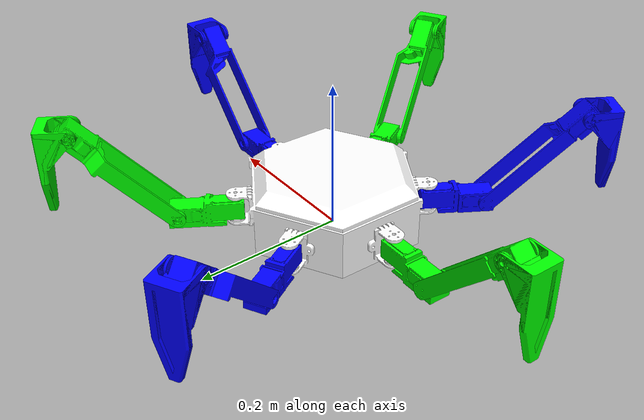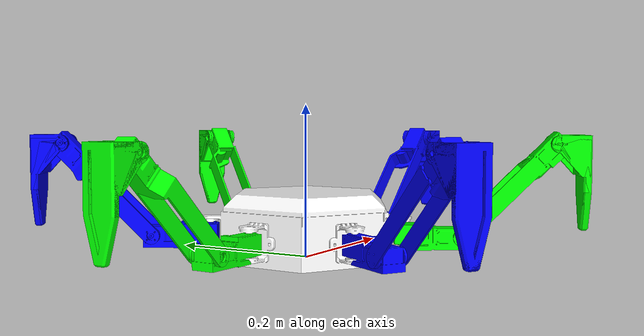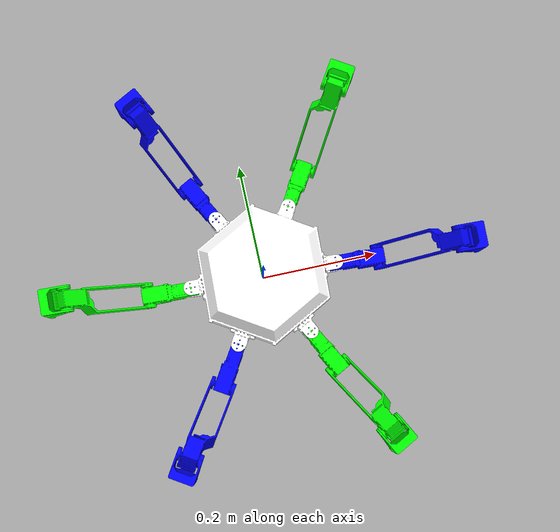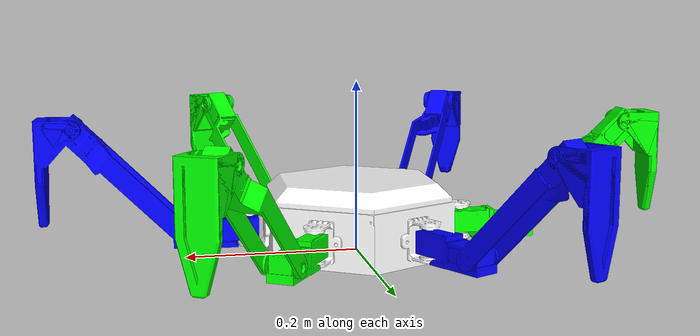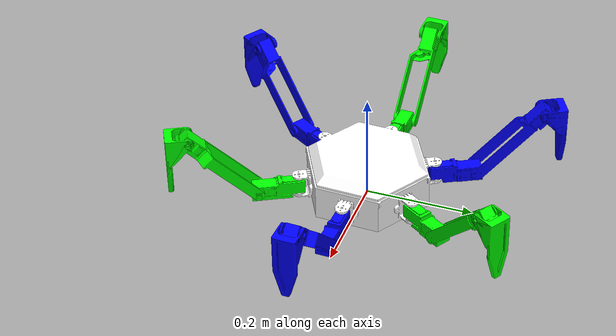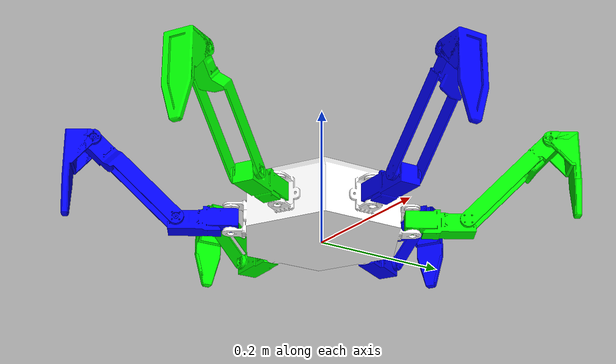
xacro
<?xml version="1.0"?>
<robot xmlns:xacro="http://ros.org/wiki/xacro" name="hexapod">

  <xacro:property name="mass_A" value="0.0329624385476769"/>
  <xacro:property name="mass_B" value="0.0491658081930703"/>
  <xacro:property name="mass_C" value="0.068102557260246"/>

  <material name="PLA">
    <color rgba="0.5 0.5 0.5 1"/>
  </material>

  <material name="base_white">
    <color rgba="1 1 1 1"/>
  </material>

  <material name="leg_blue">
    <color rgba="0 0 1 1"/>
  </material>

  <material name="leg_green">
    <color rgba="0 1 0 1"/>
  </material>

  <link name="base_footprint"/>

  <joint name="base_footprint_joint" type="fixed">
    <parent link="base_footprint"/>
    <child link="base_link"/>
    <origin xyz="0 0 0" rpy="0 0 0"/>
  </joint>

  <link name="base_link">
    <inertial>
      <origin
        xyz="8.3132949968423E-09 -1.60645398483705E-07 0.0398545694413555"
        rpy="0 0 0" />
      <mass
        value="0.508188386188677" />
      <inertia
        ixx="0.00175052303771207"   ixy="-2.89062175548116E-06"   ixz="2.99462448397941E-10"
        iyy="0.00174770751625814"  iyz="-7.33217095029747E-09"
        izz="0.00325955756407988" />
    </inertial>
    <visual>
      <origin xyz="0 0 0" rpy="0 0 0" />
      <geometry>
        <mesh filename="package://hexapod_description/meshes/base_link.STL" />
      </geometry>

      <material name="base_white"/>
    </visual>
    <collision>
      <origin
        xyz="0 0 0"
        rpy="0 0 0" />
      <geometry>
        <mesh
          filename="package://hexapod_description/meshes/base_link_collider.dae" />
      </geometry>
    </collision>
  </link>

  <xacro:macro name="leg" params="prefix

                                          origin_xA origin_yA origin_zA
                                          origin_xB origin_yB origin_zB
                                          origin_xC origin_yC origin_zC
                                          origin_xP origin_yP origin_zP

                                          ixx_A  ixy_A   ixz_A   iyy_A  iyz_A  izz_A
                                          ixx_B  ixy_B   ixz_B   iyy_B  iyz_B  izz_B
                                          ixx_C  ixy_C   ixz_C   iyy_C  iyz_C  izz_C
                                          ixx_P  ixy_P   ixz_P   iyy_P  iyz_P  izz_P

                                          joint_xA joint_yA joint_zA
                                          joint_rA joint_pA joint_jA

                                          joint_xB joint_yB joint_zB
                                          joint_rB joint_pB joint_jB

                                          joint_xC joint_yC joint_zC
                                          joint_rC joint_pC joint_jC

                                          joint_xP joint_yP joint_zP
                                          joint_rP joint_pP joint_jP

                                          axisAx axisBx axisCx  axisPx
                                          axisAy axisBy axisCy  axisPy
                                          axisAz axisBz axisCz  axisPz

                                          stlA_path stlB_path stlC_path  stlP_path
                                          colA_path colB_path colC_path

                                          lowerA lowerB lowerC
                                          upperA upperB upperC

                                          mat_name
                                        "                                     >

    <link name="${prefix}_linkA">
      <inertial>
        <mass value="${mass_A}"/>
        <origin xyz="${origin_xA} ${origin_yA} ${origin_zA}" rpy="0 0 0"/>
        <inertia ixx="${ixx_A}" ixy="${ixy_A}" ixz="${ixz_A}"
                 iyy="${iyy_A}" iyz="${iyz_A}"
                 izz="${izz_A}"/>
      </inertial>
      <visual>
        <origin xyz="0 0 0" rpy="0 0 0"/>
        <geometry>
          <mesh filename="${stlA_path}" />
        </geometry>

        <material name="${mat_name}"/>
      </visual>
      <collision>
        <origin xyz="0 0 0" rpy="0 0 0"/>
        <geometry>
          <mesh filename="${colA_path}" />
        </geometry>
      </collision>
    </link>

    <joint name="${prefix}_jointA" type="revolute">
      <origin xyz="${joint_xA} ${joint_yA} ${joint_zA}" rpy="${joint_rA} ${joint_pA} ${joint_jA}"/>
      <parent link="base_link"/>
      <child link="${prefix}_linkA"/>
      <axis xyz="${axisAx} ${axisAy} ${axisAz}"/>
      <limit  lower="${lowerA}" upper="${upperA}" effort="10" velocity="1.0"/>
      <dynamics damping="0.5" friction="0.1"/>
    </joint>

    <link name="${prefix}_linkB">
      <inertial>
        <mass value="${mass_B}"/>
        <origin xyz="${origin_xB} ${origin_yB} ${origin_zB}" rpy="0 0 0"/>
        <inertia ixx="${ixx_B}" ixy="${ixy_B}" ixz="${ixz_B}"
                 iyy="${iyy_B}" iyz="${iyz_B}"
                 izz="${izz_B}"/>
      </inertial>
      <visual>
        <origin xyz="0 0 0" rpy="0 0 0"/>
        <geometry>
          <mesh filename="${stlB_path}" />
        </geometry>

        <material name="${mat_name}"/>
      </visual>
      <collision>
        <origin xyz="0 0 0" rpy="0 0 0"/>
        <geometry>
          <mesh filename="${colB_path}" />
        </geometry>
      </collision>
    </link>

    <joint name="${prefix}_jointB" type="revolute">
      <origin xyz="${joint_xB} ${joint_yB} ${joint_zB}" rpy="${joint_rB} ${joint_pB} ${joint_jB}"/>
      <parent link="${prefix}_linkA"/>
      <child link="${prefix}_linkB"/>
      <axis xyz="${axisBx} ${axisBy} ${axisBz}"/>
      <limit  lower="${lowerB}" upper="${upperB}" effort="10" velocity="1.0"/>
      <dynamics damping="0.5" friction="0.1"/>
    </joint>

    <link name="${prefix}_linkC">
      <inertial>
        <mass value="${mass_C}"/>
        <origin xyz="${origin_xC} ${origin_yC} ${origin_zC}" rpy="0 0 0"/>
        <inertia ixx="${ixx_C}" ixy="${ixy_C}" ixz="${ixz_C}"
                 iyy="${iyy_C}" iyz="${iyz_C}"
                 izz="${izz_C}"/>
      </inertial>
      <visual>
        <origin xyz="0 0 0" rpy="0 0 0"/>
        <geometry>
          <mesh filename="${stlC_path}" />
        </geometry>

        <material name="${mat_name}"/>
      </visual>
      <collision>
        <origin xyz="0 0 0" rpy="0 0 0"/>
        <geometry>
          <mesh filename="${colC_path}" />
        </geometry>
      </collision>
    </link>

    <joint name="${prefix}_jointC" type="revolute">
      <origin xyz="${joint_xC} ${joint_yC} ${joint_zC}" rpy="${joint_rC} ${joint_pC} ${joint_jC}"/>
      <parent link="${prefix}_linkB"/>
      <child link="${prefix}_linkC"/>
      <axis xyz="${axisCx} ${axisCy} ${axisCz}"/>
      <limit  lower="${lowerC}" upper="${upperC}" effort="10" velocity="1.0"/>
      <dynamics damping="0.5" friction="0.1"/>
    </joint>

    <link name="${prefix}_linkP">
      <inertial>
        <mass value="0.001"/>
        <origin xyz="${origin_xP} ${origin_yP} ${origin_zP}" rpy="0 0 0"/>
        <inertia ixx="${ixx_P}" ixy="${ixy_P}" ixz="${ixz_P}"
                 iyy="${iyy_P}" iyz="${iyz_P}"
                 izz="${izz_P}"/>
      </inertial>
      <visual>
        <origin xyz="0 0 0" rpy="0 0 0"/>
        <geometry>
          <mesh filename="${stlP_path}" />
        </geometry>

        <material name="${mat_name}"/>
      </visual>
    </link>

    <joint name="${prefix}_jointP" type="fixed">
      <origin xyz="${joint_xP} ${joint_yP} ${joint_zP}" rpy="${joint_rP} ${joint_pP} ${joint_jP}"/>
      <parent link="${prefix}_linkC"/>
      <child link="${prefix}_linkP"/>
      <axis xyz="${axisPx} ${axisPy} ${axisPz}"/>
    </joint>

  </xacro:macro>

  <xacro:leg prefix="leg1"
             mat_name="leg_blue"
                           origin_xA="0.0436333077262725"        origin_yA="-0.000983429050531615"       origin_zA="-0.00579099697381125"
                           origin_xB="0.101870838528152"         origin_yB="-0.00274030558914196"        origin_zB="-0.00335041003005071"
                           origin_xC="0.0396589922531539"        origin_yC="-0.000979703305875712"       origin_zC="0.0183007881130968"
                           origin_xP="-0.0774005193641238"       origin_yP="-0.000101516346325103"       origin_zP="-0.00446200209805514"

                           ixx_A="4.11063607279416E-06" ixy_A="2.02839323084862E-07"  ixz_A="6.13000252409731E-07" iyy_A="1.17840539365979E-05" iyz_A="-2.65175105562365E-08" izz_A="1.16182136839027E-05"
                           ixx_B="7.62687797343541E-06" ixy_B="1.36433680022234E-05"  ixz_B="6.32130646997768E-06" iyy_B="9.61295518656803E-05" iyz_B="-1.69463851792476E-06" izz_B="9.79816595400282E-05"
                           ixx_C="1.84805656449333E-05" ixy_C="-2.67788613280572E-07" ixz_C="1.32337376294039E-05" iyy_C="7.41762250523367E-05" iyz_C="-9.11230813138536E-08" izz_C="7.94157570878884E-05"
                           ixx_P="1.63167104597987E-05" ixy_P="-2.27987502279929E-07" ixz_P="-6.6373217611144E-06" iyy_P="7.40141018310191E-05" iyz_P="-1.67439121756891E-07" izz_P="8.14120915733197E-05"

                           joint_xA="-0.066747"     joint_yA="-0.10678"       joint_zA="0.03165"
                           joint_rA="0"             joint_pA="0.035739"       joint_jA="-2.1204"

                           joint_xB="0.075536"      joint_yB="-0.001836"      joint_zB="0"
                           joint_rB="0.00047569"    joint_pB="-0.82122"       joint_jB="-0.0094139"

                           joint_xC="0.17108"       joint_yC="-0.00665"       joint_zC="0"
                           joint_rC="3.1416"        joint_pC="1.0908"         joint_jC="3.1416"

                           joint_xP="0.11638"       joint_yP="-0.00085"       joint_zP="0"
                           joint_rP="0"             joint_pP="0.30547"        joint_jP="0"

                           axisAx="-0.035728"       axisAy="0"         axisAz="0.99936"
                           axisBx="0"               axisBy="-1"        axisBz="0"
                           axisCx="0"               axisCy="-1"        axisCz="0"
                           axisPx="0"               axisPy="0"         axisPz="0"

                           lowerA="-1.5708"                lowerB="-2.96706"             lowerC="-0.872665"
                           upperA="1.5708"                 upperB="1.74533"              upperC="2.96706"

                           stlA_path="package://hexapod_description/meshes/1A_link.STL"
                           stlB_path="package://hexapod_description/meshes/1B_link.STL"
                           stlC_path="package://hexapod_description/meshes/1C_link.STL"
                           stlP_path="package://hexapod_description/meshes/1P_link.STL"

                           colA_path="package://hexapod_description/meshes/1A_link_collider.dae"
                           colB_path="package://hexapod_description/meshes/1B_link_collider.dae"
                           colC_path="package://hexapod_description/meshes/1C_link_collider.dae"
  />

  <xacro:leg prefix="leg2"
             mat_name="leg_green"
                           origin_xA="0.0430928267092412"        origin_yA="-0.00540497612153903"       origin_zA="0.0129538457442289"
                           origin_xB="0.101870758188408"         origin_yB="-0.00274030552288767"       origin_zB="-0.00335286713403343"
                           origin_xC="0.0396696358786118"        origin_yC="-0.000979703306244147"      origin_zC="0.0182899254696576"
                           origin_xP="-0.0774005193641238"       origin_yP="-0.000101517727919047"      origin_zP="-0.00446200215131309"

                           ixx_A="4.2842650710344E-06"  ixy_A="9.70938519171719E-07"  ixz_A="8.71458885550921E-07"   iyy_A="1.16637820306486E-05" iyz_A="-1.23301625642984E-07" izz_A="1.15648566711477E-05"
                           ixx_B="7.62718300402873E-06" ixy_B="1.36433271242108E-05"  ixz_B="6.32348587175763E-06"   iyy_B="9.6129551905895E-05"  iyz_B="-1.69496760520903E-06" izz_B="9.79813545530303E-05"
                           ixx_C="1.84768194960925E-05" ixy_C="-2.67775709069847E-07" ixz_C="1.3225109652228E-05"    iyy_C="7.41762250523362E-05" iyz_C="-9.11609949592177E-08" izz_C="7.94195032367302E-05"
                           ixx_P="1.63167104597985E-05" ixy_P="-2.27987461896302E-07" ixz_P="-6.63732176250068E-06"  iyy_P="7.40141018330569E-05" iyz_P="-1.67439166770418E-07" izz_P="8.14120915712826E-05"

                           joint_xA="-0.12582"        joint_yA="0.0044184"       joint_zA="0.01135"
                           joint_rA="0"               joint_pA="0"               joint_jA="-3.0654"

                           joint_xB="0.074928"        joint_yB="-0.009527"       joint_zB="0.017601"
                           joint_rB="0"               joint_pB="-0.78551"        joint_jB="-0.11127"

                           joint_xC="0.1711"          joint_yC="-0.00665"        joint_zC="0"
                           joint_rC="-3.1416"         joint_pC="1.0906"          joint_jC="-3.1416"

                           joint_xP="0.11639"         joint_yP="-0.00085"        joint_zP="0"
                           joint_rP="0"               joint_pP="0.30533"         joint_jP="0"

                           axisAx="0"          axisAy="0"         axisAz="1"
                           axisBx="0"          axisBy="-1"        axisBz="0"
                           axisCx="0"          axisCy="-1"        axisCz="0"
                           axisPx="0"          axisPy="0"         axisPz="0"

                           lowerA="-1.5708"                lowerB="-2.96706"             lowerC="-0.872665"
                           upperA="1.5708"                 upperB="1.74533"              upperC="2.96706"

                           stlA_path="package://hexapod_description/meshes/2A_link.STL"
                           stlB_path="package://hexapod_description/meshes/2B_link.STL"
                           stlC_path="package://hexapod_description/meshes/2C_link.STL"
                           stlP_path="package://hexapod_description/meshes/1P_link.STL"

                           colA_path="package://hexapod_description/meshes/1A_link_collider.dae"
                           colB_path="package://hexapod_description/meshes/1B_link_collider.dae"
                           colC_path="package://hexapod_description/meshes/1C_link_collider.dae"
  />

  <xacro:leg prefix="leg3"
             mat_name="leg_blue"
                           origin_xA="0.0436333079139021"        origin_yA="-0.000983433795987143"       origin_zA="-0.00579099682872819"
                           origin_xB="0.101870758152179"         origin_yB="-0.0027403055212869"         origin_zB="-0.00335286720269334"
                           origin_xC="0.0396696358757853"        origin_yC="-0.000979703304661822"       origin_zC="0.0182899254680321"
                           origin_xP="-0.0774005194154543"       origin_yP="-0.000101516673262747"       origin_zP="-0.00446200216199027"

                           ixx_A="4.11063610367343E-06" ixy_A="2.02839324882533E-07"  ixz_A="6.13000250342798E-07"  iyy_A="1.1784053976968E-05"  iyz_A="-2.65175120067955E-08" izz_A="1.16182136968584E-05"
                           ixx_B="7.62718300690091E-06" ixy_B="1.36433271238362E-05"  ixz_B="6.32348589089637E-06"  iyy_B="9.61295519062814E-05" iyz_B="-1.69496760811594E-06" izz_B="9.79813545505293E-05"
                           ixx_C="1.84768194960843E-05" ixy_C="-2.67775708726413E-07" ixz_C="1.32251096522163E-05"  iyy_C="7.41762250523397E-05" iyz_C="-9.11609950489801E-08" izz_C="7.94195032367347E-05"
                           ixx_P="1.63167104597984E-05" ixy_P="-2.27987492725121E-07" ixz_P="-6.63732176144121E-06" iyy_P="7.40141018315014E-05" iyz_P="-1.67439132409489E-07" izz_P="8.14120915728379E-05"

                           joint_xA="-0.059099"        joint_yA="0.11119"        joint_zA="0.03165"
                           joint_rA="0"                joint_pA="0.035732"       joint_jA="2.0683"

                           joint_xB="0.075536"         joint_yB="-0.001836"      joint_zB="0"
                           joint_rB="0.0004757"        joint_pB="-0.82124"       joint_jB="-0.0094139"

                           joint_xC="0.1711"           joint_yC="-0.00665"       joint_zC="0"
                           joint_rC="3.1416"           joint_pC="1.0906"         joint_jC="3.1416"

                           joint_xP="0.11639"          joint_yP="-0.00085"       joint_zP="0"
                           joint_rP="0"                joint_pP="0.30533"        joint_jP="0"

                           axisAx="-0.035728"          axisAy="0"         axisAz="0.99936"
                           axisBx="5.4838E-05"         axisBy="-1"        axisBz="-5.485E-05"
                           axisCx="2.3315E-05"         axisCy="-1"        axisCz="7.3974E-05"
                           axisPx="0"                  axisPy="0"         axisPz="0"

                           lowerA="-1.5708"                lowerB="-2.96706"             lowerC="-0.872665"
                           upperA="1.5708"                 upperB="1.74533"              upperC="2.96706"

                           stlA_path="package://hexapod_description/meshes/3A_link.STL"
                           stlB_path="package://hexapod_description/meshes/3B_link.STL"
                           stlC_path="package://hexapod_description/meshes/3C_link.STL"
                           stlP_path="package://hexapod_description/meshes/1P_link.STL"

                           colA_path="package://hexapod_description/meshes/1A_link_collider.dae"
                           colB_path="package://hexapod_description/meshes/1B_link_collider.dae"
                           colC_path="package://hexapod_description/meshes/1C_link_collider.dae"
  />

  <xacro:leg prefix="leg4"
             mat_name="leg_green"
                           origin_xA="0.0436333077638231"        origin_yA="-0.000983426215110494"       origin_zA="-0.00579099697327434"
                           origin_xB="0.101870757684529"         origin_yB="-0.0027403055893247"         origin_zB="-0.00335286721489159"
                           origin_xC="0.0396696358785887"        origin_yC="-0.000979703306299984"       origin_zC="0.0182899254696444"
                           origin_xP="-0.0774005193575977"       origin_yP="-0.000101517750093871"       origin_zP="-0.00446200215934681"

                           ixx_A="4.11063607281274E-06" ixy_A="2.02839323083891E-07"  ixz_A="6.13000252543518E-07"  iyy_A="1.17840539365906E-05" iyz_A="-2.65175105588552E-08" izz_A="1.16182136838759E-05"
                           ixx_B="7.62718297342003E-06" ixy_B="1.36433271225648E-05"  ixz_B="6.32348587421055E-06"  iyy_B="9.61295518656705E-05" iyz_B="-1.69496760366067E-06" izz_B="9.79813545400391E-05"
                           ixx_C="1.84768194960873E-05" ixy_C="-2.67775709028505E-07" ixz_C="1.32251096522168E-05"  iyy_C="7.4176225052337E-05"  iyz_C="-9.11609949771886E-08" izz_C="7.94195032367349E-05"
                           ixx_P="1.63167104569614E-05" ixy_P="-2.27987461284517E-07" ixz_P="-6.63732174861027E-06" iyy_P="7.40141018330899E-05" iyz_P="-1.67439167444342E-07" izz_P="8.14120915740874E-05"

                           joint_xA="0.066747"        joint_yA="0.10678"       joint_zA="0.03165"
                           joint_rA="0"               joint_pA="0.035732"      joint_jA="1.0212"

                           joint_xB="0.075536"        joint_yB="-0.001836"     joint_zB="0"
                           joint_rB="0.00047571"      joint_pB="-0.82125"      joint_jB="-0.0094139"

                           joint_xC="0.1711"         joint_yC="-0.00665"       joint_zC="0"
                           joint_rC="-3.1416"        joint_pC="1.0906"         joint_jC="-3.1416"

                           joint_xP="0.11639"        joint_yP="-0.00085"       joint_zP="0"
                           joint_rP="0"              joint_pP="0.30533"        joint_jP="0"

                           axisAx="-0.035728"          axisAy="0"          axisAz="0.99936"
                           axisBx="-3.1787E-05"        axisBy="-1"         axisBz="3.1795E-05"
                           axisCx="-1.3515E-05"        axisCy="-1"         axisCz="-4.288E-05"
                           axisPx="0"                  axisPy="0"          axisPz="0"

                           lowerA="-1.5708"                lowerB="-2.96706"             lowerC="-0.872665"
                           upperA="1.5708"                 upperB="1.74533"              upperC="2.96706"

                           stlA_path="package://hexapod_description/meshes/4A_link.STL"
                           stlB_path="package://hexapod_description/meshes/4B_link.STL"
                           stlC_path="package://hexapod_description/meshes/4C_link.STL"
                           stlP_path="package://hexapod_description/meshes/1P_link.STL"

                           colA_path="package://hexapod_description/meshes/1A_link_collider.dae"
                           colB_path="package://hexapod_description/meshes/1B_link_collider.dae"
                           colC_path="package://hexapod_description/meshes/1C_link_collider.dae"
  />

  <xacro:leg prefix="leg5"
             mat_name="leg_blue"
                           origin_xA="0.0436333076356487"        origin_yA="-0.00098345668111122"        origin_zA="-0.00579099684997697"
                           origin_xB="0.101870757949128"         origin_yB="-0.00274030552277019"        origin_zB="-0.00335286752119701"
                           origin_xC="0.0396696358634261"        origin_yC="-0.000979703306055839"       origin_zC="0.0182899254606058"
                           origin_xP="-0.0774005193761778"       origin_yP="-0.000101517543398827"       origin_zP="-0.00446200215159187"

                           ixx_A="4.11063610342843E-06" ixy_A="2.02839325081659E-07"  ixz_A="6.13000247996769E-07"  iyy_A="1.17840539747078E-05" iyz_A="-2.65175114774486E-08" izz_A="1.16182136946807E-05"
                           ixx_B="7.62718301928522E-06" ixy_B="1.36433271221595E-05"  ixz_B="6.32348598076936E-06"  iyy_B="9.6129551905897E-05"  iyz_B="-1.69496762166919E-06" izz_B="9.79813545377717E-05"
                           ixx_C="1.8476819496087E-05"  ixy_C="-2.67775708985075E-07" ixz_C="1.32251096522173E-05"  iyy_C="7.41762250523371E-05" iyz_C="-9.11609949870549E-08" izz_C="7.94195032367344E-05"
                           ixx_P="1.63167104607636E-05" ixy_P="-2.27987467278176E-07" ixz_P="-6.63732176704751E-06" iyy_P="7.40141018327849E-05" iyz_P="-1.67439160775431E-07" izz_P="8.14120915705898E-05"

                           joint_xA="0.12585"        joint_yA="-0.0044158"      joint_zA="0.03165"
                           joint_rA="0"              joint_pA=".035736"         joint_jA="-0.026443"

                           joint_xB="0.075536"       joint_yB="-0.001836"       joint_zB="0"
                           joint_rB="0.00047569"     joint_pB="-0.82121"        joint_jB="-0.0094139"

                           joint_xC="0.1711"         joint_yC="-0.00665"        joint_zC="0"
                           joint_rC="3.1416"         joint_pC="1.0907"          joint_jC="3.1416"

                           joint_xP="0.11639"        joint_yP="-0.00085"       joint_zP="0"
                           joint_rP="0"              joint_pP="0.30533"        joint_jP="0"

                           axisAx="-0.035728"        axisAy="0"         axisAz="0.99936"
                           axisBx="0"                axisBy="-1"        axisBz="0"
                           axisCx="0"                axisCy="-1"        axisCz="0"
                           axisPx="0"                axisPy="0"         axisPz="0"

                           lowerA="-1.5708"                lowerB="-2.96706"             lowerC="-0.872665"
                           upperA="1.5708"                 upperB="1.74533"              upperC="2.96706"

                           stlA_path="package://hexapod_description/meshes/5A_link.STL"
                           stlB_path="package://hexapod_description/meshes/5B_link.STL"
                           stlC_path="package://hexapod_description/meshes/5C_link.STL"
                           stlP_path="package://hexapod_description/meshes/1P_link.STL"

                           colA_path="package://hexapod_description/meshes/1A_link_collider.dae"
                           colB_path="package://hexapod_description/meshes/1B_link_collider.dae"
                           colC_path="package://hexapod_description/meshes/1C_link_collider.dae"
  />

  <xacro:leg prefix="leg6"
             mat_name="leg_green"
                           origin_xA="0.0436333079867383"        origin_yA="-0.000983428255767693"       origin_zA="-0.0057909968276284"
                           origin_xB="0.101870758200084"         origin_yB="-0.00274030552203741"        origin_zB="-0.0033528671253038"
                           origin_xC="0.0396696358789481"        origin_yC="-0.000979703306300261"       origin_zC="0.0182899254698594"
                           origin_xP="-0.0774005193641243"       origin_yP="-0.000101517727918721"       origin_zP="-0.00446200215131345"

                           ixx_A="4.11063610371602E-06" ixy_A="2.02839324881721E-07"  ixz_A="6.13000250602213E-07"  iyy_A="1.17840539769681E-05" iyz_A="-2.65175120138815E-08" izz_A="1.16182136968163E-05"
                           ixx_B="7.62718300386454E-06" ixy_B="1.36433271242787E-05"  ixz_B="6.32348586912741E-06"  iyy_B="9.61295519062704E-05" iyz_B="-1.6949676048313E-06"  izz_B="9.79813545535768E-05"
                           ixx_C="1.84768194960872E-05" ixy_C="-2.67775709028101E-07" ixz_C="1.32251096522167E-05"  iyy_C="7.41762250523365E-05" iyz_C="-9.11609949772746E-08" izz_C="7.94195032367344E-05"
                           ixx_P="1.63167104597986E-05" ixy_P="-2.27987461896634E-07" ixz_P="-6.63732176250068E-06" iyy_P="7.40141018330571E-05" iyz_P="-1.67439166770627E-07" izz_P="8.14120915712827E-05"

                           joint_xA="0.059099"        joint_yA="-0.11119"       joint_zA="0.03165"
                           joint_rA="0"               joint_pA="0.03574"        joint_jA="-1.0732"

                           joint_xB="0.075536"        joint_yB="-0.001836"      joint_zB="0"
                           joint_rB="0.00047571"      joint_pB="-0.82125"       joint_jB="-0.0094139"

                           joint_xC="0.1711"          joint_yC="-0.00665"       joint_zC="0"
                           joint_rC="-3.1416"         joint_pC="1.0906"         joint_jC="3.1416"

                           joint_xP="0.11639"        joint_yP="-0.00085"        joint_zP="0"
                           joint_rP="0"              joint_pP="0.30533"         joint_jP="0"

                           axisAx="-0.035728"        axisAy="0"                 axisAz="0.99936"
                           axisBx="0"                axisBy="-1"                axisBz="0"
                           axisCx="0"                axisCy="-1"                axisCz="0"
                           axisPx="0"                axisPy="0"                 axisPz="0"

                           lowerA="-1.5708"                lowerB="-2.96706"             lowerC="-0.872665"
                           upperA="1.5708"                 upperB="1.74533"              upperC="2.96706"

                           stlA_path="package://hexapod_description/meshes/6A_link.STL"
                           stlB_path="package://hexapod_description/meshes/6B_link.STL"
                           stlC_path="package://hexapod_description/meshes/6C_link.STL"
                           stlP_path="package://hexapod_description/meshes/1P_link.STL"

                           colA_path="package://hexapod_description/meshes/1A_link_collider.dae"
                           colB_path="package://hexapod_description/meshes/1B_link_collider.dae"
                           colC_path="package://hexapod_description/meshes/1C_link_collider.dae"
  />

</robot>
